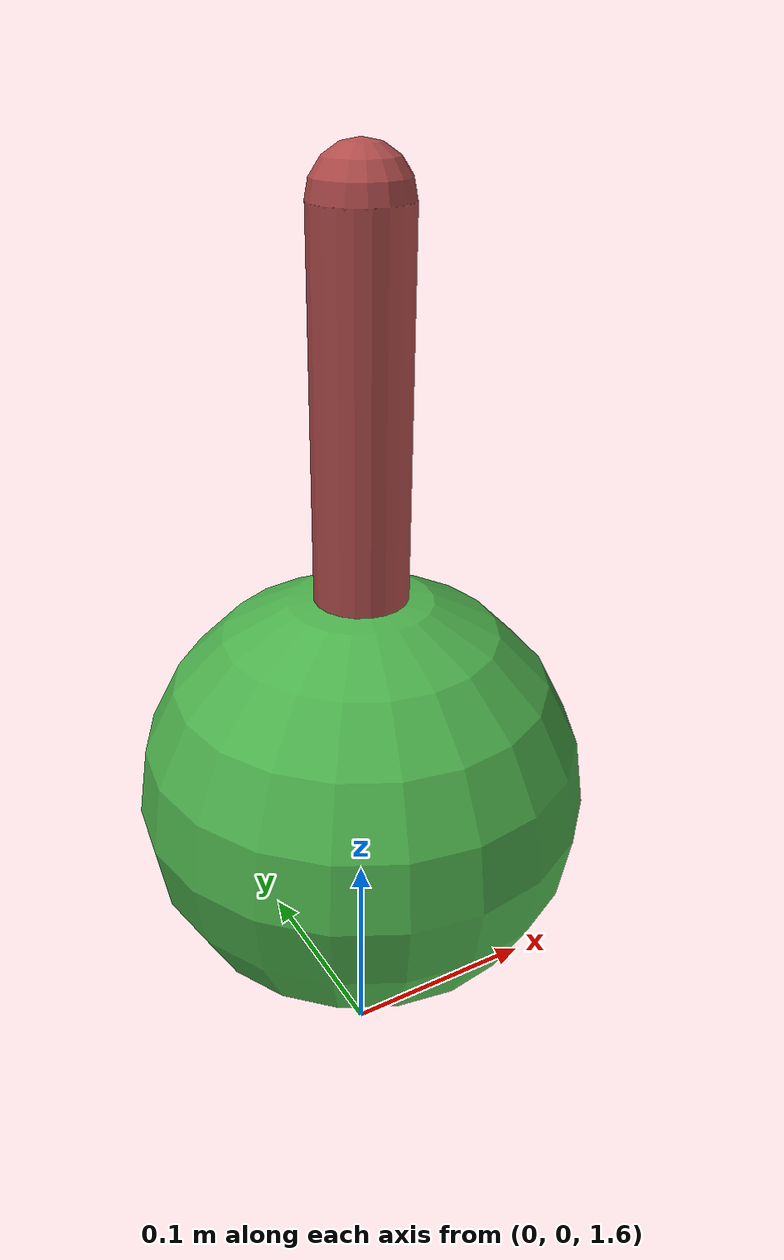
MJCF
<mujoco model="simple_hanging_pendulum">
    <compiler angle="radian" coordinate="local"/>
    <option timestep="0.015" gravity="0 0 -9.81"/>

    <visual>
        <headlight ambient=".4 .4 .4" diffuse=".8 .8 .8" specular="0.1 0.1 0.1"/>
        <map znear=".01"/>
        <quality shadowsize="2048"/>
    </visual>

    <worldbody>
        <light pos="0 0 3"/>

        <!-- Ground (visual only) -->
        <geom type="plane" size="3 3 0.1" rgba="0.8 0.8 0.8 1"/>

        <!-- Fixed anchor point at the top -->
        <body name="anchor" pos="0 0 2">
            <!-- Pendulum body -->
            <body name="pendulum" pos="0 0 0">
                <!-- Hinge joint at the anchor point -->
                <joint name="hinge"
                       type="hinge"
                       pos="0 0 0"
                       axis="1 0 0"
                       damping="0.01"/>

                <!-- Pendulum rod (massless) -->
                <geom type="capsule"
                      fromto="0 0 0 0 0 -0.25"
                      size="0.02"
                      rgba="0.7 0.3 0.3 1"
                      mass="0"/>

                <!-- Pendulum mass at the end -->
                <geom type="sphere"
                      pos="0 0 -0.25"
                      size="0.1"
                      rgba="0.3 0.7 0.3 1"
                      mass="1"/>
            </body>
        </body>
    </worldbody>

    <actuator>
        <motor name="torque"
               joint="hinge"
               gear="1"
               ctrlrange="-10 10"
               ctrllimited="true"/>
    </actuator>
</mujoco>
